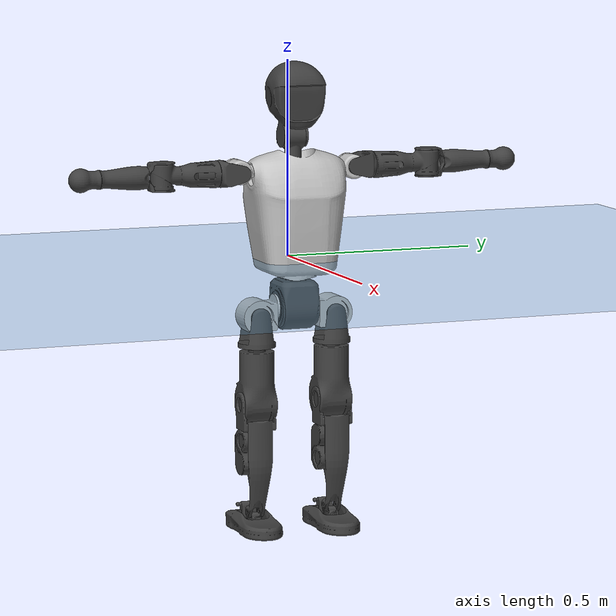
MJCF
<mujoco model="T1">
  <compiler angle="radian" assetdir="assets" balanceinertia="true" inertiafromgeom="false"/>

  <option timestep="0.005" density="1.2" viscosity="2e-05"/>

  <size nkey="1"/>

  <visual>
    <quality shadowsize="8192"/>
    <map shadowclip="0.5"/>
  </visual>

  <default>
    <default class="/">
      <joint armature="0.01" damping="0.01" frictionloss="0.1"/>
      <geom contype="0" conaffinity="0" group="1" solref="-1000 -80"/>
      <site size="0.01 0.005 0.005" group="5"/>
      <general forcelimited="true" biastype="affine" gainprm="25" biasprm="0 -25 -0.6"/>
      <default class="t1">
        <geom rgba="0.25 0.25 0.25 1"/>
        <default class="visual">
          <geom type="mesh" group="2"/>
        </default>
        <default class="collision">
          <geom group="3"/>
        </default>
        <default class="foot">
          <geom size="0.1115 0.05 0.015" type="box" condim="6" group="4" priority="1" solimp="0.015 1 0.015"/>
        </default>
        <default class="reward_collision_sphere">
          <geom group="5" rgba="1 0 0 1"/>
        </default>
      </default>
    </default>
  </default>

  <asset>
    <texture type="skybox" colorspace="auto" name="//unnamed_texture_0" builtin="gradient" rgb1="0.95 0.95 0.95" rgb2="0.95 0.95 0.95" width="100" height="600"/>
    <texture type="2d" colorspace="auto" name="texplane" builtin="checker" rgb1="0.345 0.575 0.748" rgb2="0.345 0.575 0.748" markrgb="1 1 1" width="512" height="512"/>
    <material name="MatPlane" class="/" texture="texplane" texuniform="true" texrepeat="2 2" specular="0.9"/>
    <mesh name="Trunk" class="/" file="Trunk.stl"/>
    <mesh name="H1" class="/" file="H1.stl"/>
    <mesh name="H2" class="/" file="H2.stl"/>
    <mesh name="AL1" class="/" file="AL1.stl"/>
    <mesh name="AL2" class="/" file="AL2.stl"/>
    <mesh name="AL3" class="/" file="AL3.stl"/>
    <mesh name="left_hand_link" class="/" file="left_hand_link.stl"/>
    <mesh name="AR1" class="/" file="AR1.stl"/>
    <mesh name="AR2" class="/" file="AR2.stl"/>
    <mesh name="AR3" class="/" file="AR3.stl"/>
    <mesh name="right_hand_link" class="/" file="right_hand_link.stl"/>
    <mesh name="Waist" class="/" file="Waist.stl"/>
    <mesh name="Hip_Pitch_Left" class="/" file="Hip_Pitch_Left.stl"/>
    <mesh name="Hip_Roll_Left" class="/" file="Hip_Roll_Left.stl"/>
    <mesh name="Hip_Yaw_Left" class="/" file="Hip_Yaw_Left.stl"/>
    <mesh name="Shank_Left" class="/" file="Shank_Left.stl"/>
    <mesh name="Ankle_Cross_Left" class="/" file="Ankle_Cross_Left.stl"/>
    <mesh name="left_foot_link" class="/" file="left_foot_link.stl"/>
    <mesh name="Hip_Pitch_Right" class="/" file="Hip_Pitch_Right.stl"/>
    <mesh name="Hip_Roll_Right" class="/" file="Hip_Roll_Right.stl"/>
    <mesh name="Hip_Yaw_Right" class="/" file="Hip_Yaw_Right.stl"/>
    <mesh name="Shank_Right" class="/" file="Shank_Right.stl"/>
    <mesh name="Ankle_Cross_Right" class="/" file="Ankle_Cross_Right.stl"/>
    <mesh name="right_foot_link" class="/" file="right_foot_link.stl"/>
  </asset>

  <worldbody>
    <geom name="floor" class="/" size="100 100 0.125" type="plane" group="0" material="MatPlane"/>
    <light name="toplight_shadow" class="/" pos="0 0 5" dir="0.0990148 0.0990148 -0.990148" type="directional" ambient="0.04 0.04 0.04" diffuse="0.55 0.55 0.55" specular="0.12 0.12 0.12"/>
    <light name="toplight_fill" class="/" pos="0 0 5" dir="0.0990148 0.0990148 -0.990148" type="directional" castshadow="false" ambient="0.04 0.04 0.04" diffuse="0.3 0.3 0.3" specular="0.08 0.08 0.08"/>
    <body name="trunk" childclass="t1" pos="0.00200493 -0.000268268 -0.000542956" quat="1 -8.33745e-07 -0.000508613 0.000172513">
      <inertial pos="0.040791 -0.00032551 0.107972" quat="0.999957 0.00081438 -0.00916546 -0.00119893" mass="9.50919" diaginertia="0.0222304 0.0663207 0.0674551"/>
      <joint name="//unnamed_joint_0" type="free" armature="0" damping="0" frictionloss="0"/>
      <geom name="//unnamed_geom_1" class="visual" rgba="0.76 0.76 0.76 1" mesh="Trunk"/>
      <geom name="//unnamed_geom_2" class="collision" size="0.0689031 0.0918708 0.137806" pos="0.0448832 0 0.12445" type="box"/>
      <geom name="//unnamed_geom_3" class="reward_collision_sphere" size="0.105651" pos="0.0448832 0 0.103708"/>
      <geom name="//unnamed_geom_4" class="reward_collision_sphere" size="0.0137806" pos="0.0448832 0.0825338 0"/>
      <geom name="//unnamed_geom_5" class="reward_collision_sphere" size="0.0137806" pos="0.0448832 -0.0825338 0"/>
      <geom name="//unnamed_geom_6" class="reward_collision_sphere" size="0.0137806" pos="0.0448832 0.103896 0.186675"/>
      <geom name="//unnamed_geom_7" class="reward_collision_sphere" size="0.0137806" pos="0.0448832 -0.103896 0.186675"/>
      <site name="imu" pos="-0.0135415 -0.00238254 0.0116866" size="0.00918708"/>
      <camera name="track" pos="0 -1.94197 0" quat="0.707107 0.707107 0 0" mode="trackcom"/>
      <camera name="ego_camera" pos="0.0912625 0 0.435575" quat="-0.5 -0.5 0.5 0.5"/>
      <body name="H1" pos="0.0439627 -0.00291584 0.249308" quat="1 -6.85295e-05 0.000190186 -0.00036189">
        <inertial pos="-0.00291382 -0.00235167 0.0586403" quat="0.757449 -0.0223841 0.000198002 0.652511" mass="0.352829" diaginertia="5.64761e-05 0.000185332 0.000177578"/>
        <joint name="AAHead_yaw" pos="0 0 0" axis="0.00427401 0.0134468 0.9999" range="-1.57645 1.56538" armature="0.0103029" damping="0.00532456" frictionloss="0.0980446"/>
        <geom name="//unnamed_geom_8" class="visual" mesh="H1"/>
        <body name="H2" pos="-0.00117088 -0.000607571 0.0636597" quat="0.999999 -0.000201546 0.00031691 0.00121279">
          <inertial pos="0.00489766 -0.00158118 0.10191" quat="0.988365 0.107398 -0.0778438 -0.0744406" mass="0.509311" diaginertia="0.000479447 0.00168494 0.00211477"/>
          <joint name="Head_pitch" pos="0 0 0" axis="6.32451e-05 -1 0.000173633" range="-1.23784 0.348799" armature="0.0100687" damping="0.00808213" frictionloss="0.091236"/>
          <geom name="//unnamed_geom_9" class="visual" mesh="H2"/>
          <geom name="//unnamed_geom_10" class="collision" size="0.0734966" pos="0.00748054 0 0.114079"/>
          <geom name="//unnamed_geom_11" class="reward_collision_sphere" size="0.0826837" pos="0.0149611 0 0.103708"/>
        </body>
      </body>
      <body name="AL1" pos="0.045104 0.106517 0.228987" quat="1 -3.63918e-05 0.0004375 -3.25936e-05">
        <inertial pos="-0.00302916 0.0462902 -0.00249837" quat="0.501072 0.497731 -0.503501 0.497672" mass="0.423103" diaginertia="0.000332355 0.00115584 0.000354555"/>
        <joint name="Left_Shoulder_Pitch" pos="0 0 0" axis="-0.00840517 0.999957 0.00379312" stiffness="0.0130094" range="-3.29277 1.21321" armature="0.0100453" damping="0.00742429" frictionloss="0.0819542"/>
        <geom name="//unnamed_geom_12" class="visual" rgba="0.76 0.76 0.76 1" mesh="AL1"/>
        <body name="AL2" pos="-0.000866538 0.0491569 0.00216302" quat="1 -0.000120226 8.27652e-05 0.000131715">
          <inertial pos="0.00307453 0.0376924 0.00101209" quat="0.48826 0.511351 -0.488049 0.511791" mass="0.124282" diaginertia="0.000100205 0.000318139 0.000214279"/>
          <joint name="Left_Shoulder_Roll" pos="0 0 0" axis="-1 6.9249e-05 -0.000508967" range="-1.53201 1.68441" armature="0.0092256" damping="0.0194666" frictionloss="0.0951764"/>
          <geom name="//unnamed_geom_13" class="visual" mesh="AL2"/>
          <body name="AL3" pos="0.00325601 0.0585775 -0.00106077" quat="0.999999 4.61987e-05 0.000186279 -0.00102451">
            <inertial pos="-5.98922e-05 0.081778 0.00244543" quat="0.710981 0.703125 1.87035e-05 -0.0110346" mass="0.794113" diaginertia="0.00308579 0.0109412 0.0007375"/>
            <joint name="Left_Elbow_Pitch" pos="0 0 0" axis="0.0049305 -0.999987 0.00126824" range="-2.26426 2.32078" armature="0.0078994" damping="0.001037" frictionloss="0.0893343"/>
            <geom name="//unnamed_geom_14" class="visual" mesh="AL3"/>
            <geom name="//unnamed_geom_15" class="collision" size="0.0275612 0.0689031" pos="0 0.0485493 0" quat="0.707105 0.707108 0 0" type="cylinder"/>
            <geom name="//unnamed_geom_16" class="reward_collision_sphere" size="0.0330735"/>
            <body name="left_hand_link" pos="0.000933453 0.143333 9.0961e-05" quat="0.999999 0.00118936 -0.000326587 0.000115344">
              <inertial pos="0.0023224 0.103849 0.00150145" quat="0.70793 0.706282 1.82085e-05 -0.000222064" mass="0.249483" diaginertia="0.00192175 0.00707832 0.000251349"/>
              <joint name="Left_Elbow_Yaw" pos="0 0 0" axis="0.000789165 0.00566908 0.999984" range="-2.41878 -0.0337693" armature="0.0103746" damping="0.0240189" frictionloss="0.103493"/>
              <geom name="//unnamed_geom_17" class="visual" mesh="left_hand_link"/>
              <geom name="//unnamed_geom_18" class="collision" size="0.0275612 0.0803869" pos="0 0.126228 0" quat="0.707105 0.707108 0 0" type="cylinder"/>
              <geom name="//unnamed_geom_19" class="reward_collision_sphere" size="0.0459354"/>
              <geom name="//unnamed_geom_20" class="reward_collision_sphere" size="0.0321548" pos="0 0.106808 0"/>
              <geom name="//unnamed_geom_21" class="reward_collision_sphere" size="0.0321548" pos="0 0.208762 0"/>
            </body>
          </body>
        </body>
      </body>
      <body name="AR1" pos="0.0437863 -0.105142 0.226651" quat="0.999999 -3.26683e-05 0.001107 -0.000546442">
        <inertial pos="-4.44692e-05 -0.0443881 0.000128827" quat="0.504289 0.495603 -0.504239 0.495795" mass="0.414772" diaginertia="0.000322235 0.00112172 0.000351043"/>
        <joint name="Right_Shoulder_Pitch" pos="0 0 0" axis="0.0011818 -0.999993 0.00353392" stiffness="0.0143172" range="-1.22394 3.3002" armature="0.0100648" damping="0" frictionloss="0.0847679"/>
        <geom name="//unnamed_geom_22" class="visual" rgba="0.76 0.76 0.76 1" mesh="AR1"/>
        <body name="AR2" pos="0.00102088 -0.0439357 -0.00279019" quat="1 3.8237e-05 4.31219e-05 0.000520508">
          <inertial pos="0.00122336 -0.0343805 -0.00252525" quat="0.511473 0.487387 -0.513486 0.487012" mass="0.128058" diaginertia="9.64626e-05 0.000295627 0.000218432"/>
          <joint name="Right_Shoulder_Roll" pos="0 0 0" axis="-0.99984 0.0168443 0.00601505" range="-1.68879 1.58999" armature="0.00947571" damping="0.021748" frictionloss="0.0904697"/>
          <geom name="//unnamed_geom_23" class="visual" mesh="AR2"/>
          <body name="AR3" pos="0.00129039 -0.0571255 -0.000140888" quat="1 -5.13144e-06 4.24164e-06 3.9936e-06">
            <inertial pos="-0.00305579 -0.0830104 -0.000491272" quat="0.704164 0.710027 0.0035343 -0.00139601" mass="0.787839" diaginertia="0.00304483 0.011044 0.000767449"/>
            <joint name="Right_Elbow_Pitch" pos="0 0 0" axis="-0.00531557 0.999986 0.000313157" range="-2.26815 2.22833" armature="0.00921983" damping="0.0122262" frictionloss="0.0793623"/>
            <geom name="//unnamed_geom_24" class="visual" mesh="AR3"/>
            <geom name="//unnamed_geom_25" class="collision" size="0.0275612 0.0689031" pos="0 -0.0485493 0" quat="0.707105 0.707108 0 0" type="cylinder"/>
            <geom name="//unnamed_geom_26" class="reward_collision_sphere" size="0.0330735"/>
            <body name="right_hand_link" pos="0.000727666 -0.141078 -0.000831997" quat="1 0.000167648 -0.000110499 0.000156686">
              <inertial pos="0.000317197 -0.105257 0.00350177" quat="0.706367 0.707845 -0.000246225 0.000693223" mass="0.255144" diaginertia="0.00190937 0.00685815 0.000258712"/>
              <joint name="Right_Elbow_Yaw" pos="0 0 0" axis="-0.00243207 0.0021308 0.999995" stiffness="0.00828477" range="0.0321125 2.44362" armature="0.0090409" damping="0.00243866" frictionloss="0.0792928"/>
              <geom name="//unnamed_geom_27" class="visual" mesh="right_hand_link"/>
              <geom name="//unnamed_geom_28" class="collision" size="0.0275612 0.0803869" pos="0 -0.126228 0" quat="0.707105 0.707108 0 0" type="cylinder"/>
              <geom name="//unnamed_geom_29" class="reward_collision_sphere" size="0.0459354"/>
              <geom name="//unnamed_geom_30" class="reward_collision_sphere" size="0.0321548" pos="0 -0.106808 0"/>
              <geom name="//unnamed_geom_31" class="reward_collision_sphere" size="0.0321548" pos="0 -0.208762 0"/>
            </body>
          </body>
        </body>
      </body>
      <body name="Waist" pos="0.0468979 -0.000870452 -0.120242" quat="1 -0.000413149 -0.000492149 0.000159145">
        <inertial pos="0.00208252 -0.000495808 0.00741491" quat="0.982719 -0.000491458 -0.184926 0.00807657" mass="1.94713" diaginertia="0.00129789 0.00452014 0.0058715"/>
        <joint name="Waist" pos="0 0 0" axis="0.000654351 -0.0138542 0.999904" stiffness="0.000797791" range="-1.60377 1.53765" armature="0.00922836" damping="0.00936921" frictionloss="0.0793374"/>
        <geom name="//unnamed_geom_32" class="visual" mesh="Waist"/>
        <body name="Hip_Pitch_Left" pos="0.00140807 0.101426 9.54689e-05" quat="1 0.000222515 1.74429e-05 -0.000224612">
          <inertial pos="0.00117671 -0.00998357 -0.0190825" quat="0.975966 0.217455 0.0133711 0.00507773" mass="0.789083" diaginertia="0.000414544 0.00130086 0.00155632"/>
          <joint name="Left_Hip_Pitch" pos="0 0 0" axis="0.000118469 0.999988 0.0049948" stiffness="0.00619351" range="-1.79606 1.57721" armature="0.0100661" damping="0.022642" frictionloss="0.0915332"/>
          <geom name="//unnamed_geom_33" class="visual" rgba="0.76 0.76 0.76 1" mesh="Hip_Pitch_Left"/>
          <body name="Hip_Roll_Left" pos="0.00277303 -0.00121124 -0.0214303" quat="0.999999 -0.000113202 -0.001121 -0.00102665">
            <inertial pos="0.00333468 0.000533987 -0.0554386" quat="0.706398 -0.00423568 -0.0055657 0.70778" mass="0.279388" diaginertia="0.000382207 0.00126279 0.000589197"/>
            <joint name="Left_Hip_Roll" pos="0 0 0" axis="-0.999895 0.0108424 -0.00964205" range="-1.51297 0.217768" armature="0.00850526" damping="0.000960635" frictionloss="0.0904611"/>
            <geom name="//unnamed_geom_34" class="visual" mesh="Hip_Roll_Left"/>
            <geom name="//unnamed_geom_35" class="reward_collision_sphere" size="0.0505289"/>
            <body name="Hip_Yaw_Left" pos="0.00205451 -0.00169673 -0.0842041" quat="0.999999 0.000895453 -0.00109783 0.000244198">
              <inertial pos="-0.00769763 0.000362394 -0.0923795" quat="0.696598 -0.0323025 -0.0276878 0.716199" mass="1.69284" diaginertia="0.00631545 0.0222654 0.00314716"/>
              <joint name="Left_Hip_Yaw" pos="0 0 0" axis="0.0003731 0.00160398 -0.999999" range="-0.95185 1.06268" armature="0.00919212" damping="0.00559563" frictionloss="0.103862"/>
              <geom name="//unnamed_geom_36" class="visual" mesh="Hip_Yaw_Left"/>
              <geom name="//unnamed_geom_37" class="collision" size="0.0459354 0.0734966" type="cylinder"/>
              <body name="Shank_Left" pos="-0.0112356 0.0023543 -0.139634" quat="1 -4.94681e-05 -5.65677e-05 2.89802e-05">
                <inertial pos="-0.00713414 0.000235661 -0.129419" quat="0.997359 -0.00190421 -0.0128953 0.0714546" mass="1.32142" diaginertia="0.0081855 0.0309191 0.00230256"/>
                <joint name="Left_Knee_Pitch" pos="0 0 0" axis="-0.0114617 0.999925 0.00432259" range="0.010413 2.38951" armature="0.00812427" damping="0.00843281" frictionloss="0.104347"/>
                <geom name="//unnamed_geom_38" class="visual" mesh="Shank_Left"/>
                <geom name="//unnamed_geom_39" class="collision" size="0.0459354 0.0689031" pos="0 0 -0.12445" type="cylinder"/>
                <geom name="//unnamed_geom_40" class="reward_collision_sphere" size="0.059716"/>
                <body name="Ankle_Cross_Left" pos="-0.000247461 -0.000198384 -0.290827" quat="1 -1.94787e-06 0.00012193 0.000270893">
                  <inertial pos="-0.00259329 -0.000756362 -0.00768145" quat="0.445232 0.551929 0.550346 0.440752" mass="0.0576644" diaginertia="6.97777e-06 2.24266e-05 1.36532e-05"/>
                  <joint name="Left_Ankle_Pitch" pos="0 0 0" axis="0.00642729 0.999945 -0.00830854" range="-0.866976 0.307163" armature="0.0104307" damping="0.0116499" frictionloss="0.0885492"/>
                  <geom name="//unnamed_geom_41" class="visual" mesh="Ankle_Cross_Left"/>
                  <body name="left_foot_link" pos="0.00190069 -0.00111653 -0.0134839" quat="1 0.000205561 -0.000155284 3.52441e-06">
                    <inertial pos="-0.00271959 0.00213134 -0.00944844" quat="0.00220873 0.621059 0.0042894 0.783749" mass="0.533832" diaginertia="0.000623294 0.00201903 0.0025151"/>
                    <joint name="Left_Ankle_Roll" pos="0 0 0" axis="-0.999984 0.00319069 -0.00456311" range="-0.410847 0.42161" armature="0.00931006" damping="0.00150131" frictionloss="0.0964904"/>
                    <geom name="//unnamed_geom_42" class="visual" mesh="left_foot_link"/>
                    <geom name="left_foot" class="foot" size="0.101451 0.0447007 0.0135507" pos="0.00748054 0 -0.0155562"/>
                    <geom name="//unnamed_geom_44" class="reward_collision_sphere" size="0.0477728" pos="0.00748054 0 -0.0155562"/>
                    <geom name="//unnamed_geom_45" class="reward_collision_sphere" size="0.0275612" pos="0.0710651 -0.0223327 -0.0155562"/>
                    <geom name="//unnamed_geom_46" class="reward_collision_sphere" size="0.0275612" pos="-0.0523637 -0.0223327 -0.0155562"/>
                    <site name="left_foot" class="foot" pos="0.00748054 0 -0.0155562" size="0.00918708"/>
                  </body>
                </body>
              </body>
            </body>
          </body>
        </body>
        <body name="Hip_Pitch_Right" pos="-0.000830989 -0.102284 -0.00171123" quat="1 7.18818e-05 -0.00011232 9.04216e-06">
          <inertial pos="0.00125882 0.00736322 -0.0213332" quat="0.972986 -0.230454 0.0134625 -0.00286892" mass="0.784569" diaginertia="0.000409223 0.00130741 0.00151597"/>
          <joint name="Right_Hip_Pitch" pos="0 0 0" axis="-0.000903652 -0.999999 0.000891148" range="-1.61836 1.85442" armature="0.00902796" damping="0.0211102" frictionloss="0.0793595"/>
          <geom name="//unnamed_geom_47" class="visual" rgba="0.76 0.76 0.76 1" mesh="Hip_Pitch_Right"/>
          <body name="Hip_Roll_Right" pos="0.00276379 0.000121612 -0.0212711" quat="1 -8.23068e-05 -0.000162756 6.88489e-05">
            <inertial pos="0.00156632 -0.00295592 -0.0531615" quat="0.707851 -0.00641721 -0.00364711 0.706323" mass="0.289097" diaginertia="0.00039684 0.00126242 0.000618154"/>
            <joint name="Right_Hip_Roll" pos="0 0 0" axis="-0.999894 -0.0135075 -0.0055065" range="-0.203066 1.58973" armature="0.00823791" damping="0.00257279" frictionloss="0.0869542"/>
            <geom name="//unnamed_geom_48" class="visual" mesh="Hip_Roll_Right"/>
            <geom name="//unnamed_geom_49" class="reward_collision_sphere" size="0.0505289"/>
            <body name="Hip_Yaw_Right" pos="-0.000740266 0.000237169 -0.0878886" quat="1 0.000439081 0.000173301 0.000549287">
              <inertial pos="-0.00366366 0.00219664 -0.0944362" quat="0.722371 -0.0263394 -0.0349202 0.690121" mass="1.68725" diaginertia="0.00610616 0.0217904 0.00313069"/>
              <joint name="Right_Hip_Yaw" pos="0 0 0" axis="0.00317487 -0.00345362 -0.999989" stiffness="0.000566602" range="-0.99656 0.98853" armature="0.00977928" damping="0.0136966" frictionloss="0.0921019"/>
              <geom name="//unnamed_geom_50" class="visual" mesh="Hip_Yaw_Right"/>
              <geom name="//unnamed_geom_51" class="collision" size="0.0459354 0.0734966" type="cylinder"/>
              <body name="Shank_Right" pos="-0.00878844 -0.0027537 -0.136888" quat="1 -0.000223499 -5.99056e-06 -7.87104e-05">
                <inertial pos="-0.00690328 0.00185592 -0.128297" quat="0.99916 -0.0117519 -0.0185645 -0.0345791" mass="1.41456" diaginertia="0.00786083 0.0289135 0.00230099"/>
                <joint name="Right_Knee_Pitch" pos="0 0 0" axis="-0.00600288 -0.99996 0.00661218" range="-2.36867 0.00419725" armature="0.00916892" damping="0.00465984" frictionloss="0.0885271"/>
                <geom name="//unnamed_geom_52" class="visual" mesh="Shank_Right"/>
                <geom name="//unnamed_geom_53" class="collision" size="0.0459354 0.0689031" pos="0 0 -0.12445" type="cylinder"/>
                <geom name="//unnamed_geom_54" class="reward_collision_sphere" size="0.059716"/>
                <body name="Ankle_Cross_Right" pos="-0.000812032 -0.00161076 -0.289107" quat="1 3.29266e-05 6.87132e-05 6.67313e-05">
                  <inertial pos="-0.00214641 -0.00253969 -0.00897445" quat="0.436899 0.54491 0.561248 0.444064" mass="0.056504" diaginertia="6.78477e-06 2.06997e-05 1.30738e-05"/>
                  <joint name="Right_Ankle_Pitch" pos="0 0 0" axis="-0.000650723 -0.999948 0.0101515" range="-0.329307 0.868182" armature="0.0101692" damping="0" frictionloss="0.08958"/>
                  <geom name="//unnamed_geom_55" class="visual" mesh="Ankle_Cross_Right"/>
                  <body name="right_foot_link" pos="0.000162939 -0.00159944 -0.00951202" quat="1 -1.33842e-05 -2.2217e-05 -2.52494e-05">
                    <inertial pos="0.00080876 7.9316e-05 -0.0067365" quat="0.00334734 0.614933 0.00256043 0.788568" mass="0.537079" diaginertia="0.000652201 0.00204755 0.00261061"/>
                    <joint name="Right_Ankle_Roll" pos="0 0 0" axis="-0.999989 -0.00407257 -0.00229372" stiffness="0.00240958" range="-0.450617 0.401674" armature="0.00953625" damping="0.0145566" frictionloss="0.0824856"/>
                    <geom name="//unnamed_geom_56" class="visual" mesh="right_foot_link"/>
                    <geom name="right_foot" class="foot" size="0.106977 0.0452523 0.0141496" pos="0.00748054 0 -0.0155562"/>
                    <geom name="//unnamed_geom_58" class="reward_collision_sphere" size="0.0367483"/>
                    <geom name="//unnamed_geom_59" class="reward_collision_sphere" size="0.0275612" pos="0.00748054 0 -0.0155562"/>
                    <geom name="//unnamed_geom_60" class="reward_collision_sphere" size="0.0275612" pos="0.0710651 0.0223327 -0.0155562"/>
                    <geom name="//unnamed_geom_61" class="reward_collision_sphere" size="0.0275612" pos="-0.0523637 0.0223327 -0.0155562"/>
                    <site name="right_foot" class="foot" pos="0.00748054 0 -0.0155562" size="0.00918708"/>
                  </body>
                </body>
              </body>
            </body>
          </body>
        </body>
      </body>
    </body>
  </worldbody>

  <contact>
    <pair class="/" geom1="floor" geom2="left_foot" name="//unnamed_contact_0"/>
    <pair class="/" geom1="floor" geom2="right_foot" name="//unnamed_contact_1"/>
  </contact>

  <actuator>
    <general name="AAHead_yaw" class="/" joint="AAHead_yaw" forcerange="-6.96081 6.96081" gainprm="23.0902" biasprm="0 -23.0902 -0.50538"/>
    <general name="Head_pitch" class="/" joint="Head_pitch" forcerange="-6.17713 6.17713" gainprm="23.0902" biasprm="0 -23.0902 -0.50538"/>
    <general name="Left_Shoulder_Pitch" class="/" joint="Left_Shoulder_Pitch" forcerange="-16.2147 16.2147" gainprm="23.0902" biasprm="0 -23.0902 -0.50538"/>
    <general name="Left_Shoulder_Roll" class="/" joint="Left_Shoulder_Roll" forcerange="-16.3439 16.3439" gainprm="23.0902" biasprm="0 -23.0902 -0.50538"/>
    <general name="Left_Elbow_Pitch" class="/" joint="Left_Elbow_Pitch" forcerange="-18.0468 18.0468" gainprm="23.0902" biasprm="0 -23.0902 -0.50538"/>
    <general name="Left_Elbow_Yaw" class="/" joint="Left_Elbow_Yaw" forcerange="-17.5856 17.5856" gainprm="23.0902" biasprm="0 -23.0902 -0.50538"/>
    <general name="Right_Shoulder_Pitch" class="/" joint="Right_Shoulder_Pitch" forcerange="-16.3125 16.3125" gainprm="23.0902" biasprm="0 -23.0902 -0.50538"/>
    <general name="Right_Shoulder_Roll" class="/" joint="Right_Shoulder_Roll" forcerange="-17.064 17.064" gainprm="23.0902" biasprm="0 -23.0902 -0.50538"/>
    <general name="Right_Elbow_Pitch" class="/" joint="Right_Elbow_Pitch" forcerange="-16.4292 16.4292" gainprm="23.0902" biasprm="0 -23.0902 -0.50538"/>
    <general name="Right_Elbow_Yaw" class="/" joint="Right_Elbow_Yaw" forcerange="-15.9274 15.9274" gainprm="23.0902" biasprm="0 -23.0902 -0.50538"/>
    <general name="Waist" class="/" joint="Waist" forcerange="-28.7156 28.7156" gainprm="23.0902" biasprm="0 -23.0902 -0.50538"/>
    <general name="Left_Hip_Pitch" class="/" joint="Left_Hip_Pitch" forcerange="-40.9888 40.9888" gainprm="23.0902" biasprm="0 -23.0902 -0.50538"/>
    <general name="Left_Hip_Roll" class="/" joint="Left_Hip_Roll" forcerange="-26.4334 26.4334" gainprm="23.0902" biasprm="0 -23.0902 -0.50538"/>
    <general name="Left_Hip_Yaw" class="/" joint="Left_Hip_Yaw" forcerange="-25.134 25.134" gainprm="23.0902" biasprm="0 -23.0902 -0.50538"/>
    <general name="Left_Knee_Pitch" class="/" joint="Left_Knee_Pitch" forcerange="-56.325 56.325" gainprm="23.0902" biasprm="0 -23.0902 -0.50538"/>
    <general name="Left_Ankle_Pitch" class="/" joint="Left_Ankle_Pitch" forcerange="-17.572 17.572" gainprm="23.0902" biasprm="0 -23.0902 -0.50538"/>
    <general name="Left_Ankle_Roll" class="/" joint="Left_Ankle_Roll" forcerange="-13.6159 13.6159" gainprm="23.0902" biasprm="0 -23.0902 -0.50538"/>
    <general name="Right_Hip_Pitch" class="/" joint="Right_Hip_Pitch" forcerange="-41.6008 41.6008" gainprm="23.0902" biasprm="0 -23.0902 -0.50538"/>
    <general name="Right_Hip_Roll" class="/" joint="Right_Hip_Roll" forcerange="-28.5785 28.5785" gainprm="23.0902" biasprm="0 -23.0902 -0.50538"/>
    <general name="Right_Hip_Yaw" class="/" joint="Right_Hip_Yaw" forcerange="-27.8473 27.8473" gainprm="23.0902" biasprm="0 -23.0902 -0.50538"/>
    <general name="Right_Knee_Pitch" class="/" joint="Right_Knee_Pitch" forcerange="-49.9889 49.9889" gainprm="23.0902" biasprm="0 -23.0902 -0.50538"/>
    <general name="Right_Ankle_Pitch" class="/" joint="Right_Ankle_Pitch" forcerange="-16.5295 16.5295" gainprm="23.0902" biasprm="0 -23.0902 -0.50538"/>
    <general name="Right_Ankle_Roll" class="/" joint="Right_Ankle_Roll" forcerange="-13.6206 13.6206" gainprm="23.0902" biasprm="0 -23.0902 -0.50538"/>
  </actuator>

  <sensor>
    <gyro site="imu" name="imu_angular_velocity"/>
    <velocimeter site="imu" name="imu_linear_velocity"/>
    <framelinvel objtype="site" objname="left_foot" name="left_foot_global_linear_velocity"/>
    <framelinvel objtype="site" objname="right_foot" name="right_foot_global_linear_velocity"/>
  </sensor>

  <keyframe>
    <key name="home" qpos="0 0 0.6385 1 0 0 0 0 0 0 1.4 0 -0.4 0 -1.4 0 0.4 0 -0.4 0 0 0.8 -0.4 0 0.4 0 0 -0.8 0.4 0"/>
  </keyframe>
</mujoco>
